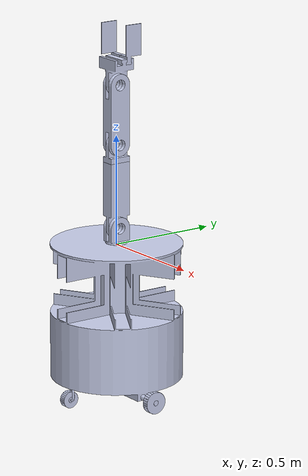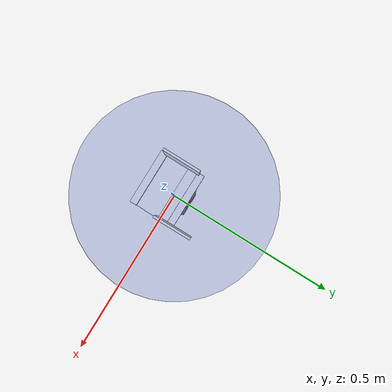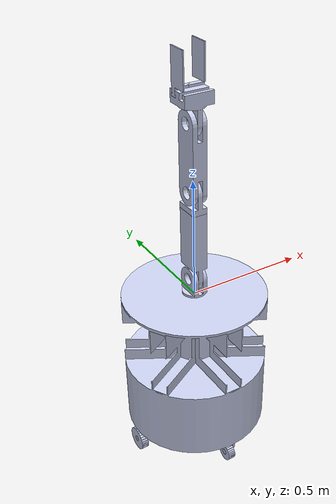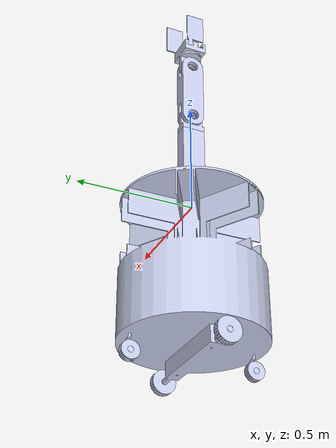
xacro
<?xml version="1.0" encoding="utf-8"?>
<robot
  name="library_bot_assm">
  <link
    name="base_link">
    <inertial>
      <origin
        xyz="-9.00001597661697E-18 -2.58181987165882E-17 -0.419286362322794"
        rpy="0 0 0" />
      <mass
        value="95.6023685202303" />
      <inertia
        ixx="3.54500161671179"
        ixy="-5.31259064517897E-18"
        ixz="2.76471553983804E-18"
        iyy="3.57118394280799"
        iyz="-3.31181542125083E-16"
        izz="3.86248881264609" />
    </inertial>
    <visual>
      <origin
        xyz="0 0 0"
        rpy="0 0 0" />
      <geometry>
        <mesh
          filename="package://library_bot_assm/meshes/base_link.STL" />
      </geometry>
      <material
        name="">
        <color
          rgba="0.792156862745098 0.819607843137255 0.933333333333333 1" />
      </material>
    </visual>
    <collision>
      <origin
        xyz="0 0 0"
        rpy="0 0 0" />
      <geometry>
        <mesh
          filename="package://library_bot_assm/meshes/base_link.STL" />
      </geometry>
    </collision>
  </link>
  <link
    name="drive_wheel_left_link">
    <inertial>
      <origin
        xyz="-2.28615654084008E-16 1.11022302462516E-16 -0.015"
        rpy="0 0 0" />
      <mass
        value="0.220374767201206" />
      <inertia
        ixx="0.000162575540140175"
        ixy="-3.36042123849673E-22"
        ixz="2.4353779546448E-21"
        iyy="0.000162575540140175"
        iyz="4.50137116569684E-22"
        izz="0.000292094865200169" />
    </inertial>
    <visual>
      <origin
        xyz="0 0 0"
        rpy="0 0 0" />
      <geometry>
        <mesh
          filename="package://library_bot_assm/meshes/drive_wheel_left_link.STL" />
      </geometry>
      <material
        name="">
        <color
          rgba="0.792156862745098 0.819607843137255 0.933333333333333 1" />
      </material>
    </visual>
    <collision>
      <origin
        xyz="0 0 0"
        rpy="0 0 0" />
      <geometry>
        <mesh
          filename="package://library_bot_assm/meshes/drive_wheel_left_link.STL" />
      </geometry>
    </collision>
  </link>
  <joint
    name="drive_wheel_left_joint"
    type="continuous">
    <origin
      xyz="-0.27 0 -0.66"
      rpy="-1.5707963267949 0 -1.5707963267949" />
    <parent
      link="base_link" />
    <child
      link="drive_wheel_left_link" />
    <axis
      xyz="0 0 1" />
  </joint>
  <link
    name="drive_wheel_right_link">
    <inertial>
      <origin
        xyz="-2.28513258118277E-16 0 0.0150000000000001"
        rpy="0 0 0" />
      <mass
        value="0.220374767201206" />
      <inertia
        ixx="0.000162575540140175"
        ixy="-4.80798731046448E-21"
        ixz="4.59902630806203E-22"
        iyy="0.000162575540140175"
        iyz="-2.95317189816604E-22"
        izz="0.000292094865200169" />
    </inertial>
    <visual>
      <origin
        xyz="0 0 0"
        rpy="0 0 0" />
      <geometry>
        <mesh
          filename="package://library_bot_assm/meshes/drive_wheel_right_link.STL" />
      </geometry>
      <material
        name="">
        <color
          rgba="0.792156862745098 0.819607843137255 0.933333333333333 1" />
      </material>
    </visual>
    <collision>
      <origin
        xyz="0 0 0"
        rpy="0 0 0" />
      <geometry>
        <mesh
          filename="package://library_bot_assm/meshes/drive_wheel_right_link.STL" />
      </geometry>
    </collision>
  </link>
  <joint
    name="drive_wheel_right_joint"
    type="continuous">
    <origin
      xyz="0.27 0 -0.66"
      rpy="-1.5707963267949 0 -1.5707963267949" />
    <parent
      link="base_link" />
    <child
      link="drive_wheel_right_link" />
    <axis
      xyz="0 0 1" />
  </joint>
  <link
    name="swivel_front_link">
    <inertial>
      <origin
        xyz="0.00760462966279492 -0.0633613818775779 0"
        rpy="0 0 0" />
      <mass
        value="0.0236444808728788" />
      <inertia
        ixx="1.38069026593696E-05"
        ixy="-2.40548516604097E-06"
        ixz="-1.41776354874208E-22"
        iyy="5.52868478263428E-06"
        iyz="-1.99276965618111E-22"
        izz="1.8073623534725E-05" />
    </inertial>
    <visual>
      <origin
        xyz="0 0 0"
        rpy="0 0 0" />
      <geometry>
        <mesh
          filename="package://library_bot_assm/meshes/swivel_front_link.STL" />
      </geometry>
      <material
        name="">
        <color
          rgba="0.792156862745098 0.819607843137255 0.933333333333333 1" />
      </material>
    </visual>
    <collision>
      <origin
        xyz="0 0 0"
        rpy="0 0 0" />
      <geometry>
        <mesh
          filename="package://library_bot_assm/meshes/swivel_front_link.STL" />
      </geometry>
    </collision>
  </link>
  <joint
    name="swivel_front_joint"
    type="continuous">
    <origin
      xyz="0 0.25982621214848 -0.595"
      rpy="1.5707963267949 0 0" />
    <parent
      link="base_link" />
    <child
      link="swivel_front_link" />
    <axis
      xyz="0 1 0" />
  </joint>
  <link
    name="swivelwheel_front_link">
    <inertial>
      <origin
        xyz="5.55111512312578E-17 1.11022302462516E-16 2.22614707383154E-16"
        rpy="0 0 0" />
      <mass
        value="0.117291638747911" />
      <inertia
        ixx="5.44584550233809E-05"
        ixy="-1.83756880608948E-20"
        ixz="4.65183930171833E-21"
        iyy="5.44584550233809E-05"
        iyz="-6.74640617676431E-21"
        izz="9.13231642345752E-05" />
    </inertial>
    <visual>
      <origin
        xyz="0 0 0"
        rpy="0 0 0" />
      <geometry>
        <mesh
          filename="package://library_bot_assm/meshes/swivelwheel_front_link.STL" />
      </geometry>
      <material
        name="">
        <color
          rgba="0.792156862745098 0.819607843137255 0.933333333333333 1" />
      </material>
    </visual>
    <collision>
      <origin
        xyz="0 0 0"
        rpy="0 0 0" />
      <geometry>
        <mesh
          filename="package://library_bot_assm/meshes/swivelwheel_front_link.STL" />
      </geometry>
    </collision>
  </link>
  <joint
    name="swivelwheel_front_joint"
    type="continuous">
    <origin
      xyz="0 -0.0774999999999999 0"
      rpy="0 -1.5707963267949 0" />
    <parent
      link="swivel_front_link" />
    <child
      link="swivelwheel_front_link" />
    <axis
      xyz="0 0 1" />
  </joint>
  <link
    name="swivel_back_link">
    <inertial>
      <origin
        xyz="0.0076046296627947 -0.0633613818775779 0"
        rpy="0 0 0" />
      <mass
        value="0.0236444808728788" />
      <inertia
        ixx="1.38069026593696E-05"
        ixy="-2.40548516604097E-06"
        ixz="-1.41776354874208E-22"
        iyy="5.52868478263428E-06"
        iyz="-1.99276965618111E-22"
        izz="1.8073623534725E-05" />
    </inertial>
    <visual>
      <origin
        xyz="0 0 0"
        rpy="0 0 0" />
      <geometry>
        <mesh
          filename="package://library_bot_assm/meshes/swivel_back_link.STL" />
      </geometry>
      <material
        name="">
        <color
          rgba="0.792156862745098 0.819607843137255 0.933333333333333 1" />
      </material>
    </visual>
    <collision>
      <origin
        xyz="0 0 0"
        rpy="0 0 0" />
      <geometry>
        <mesh
          filename="package://library_bot_assm/meshes/swivel_back_link.STL" />
      </geometry>
    </collision>
  </link>
  <joint
    name="swivel_back_joint"
    type="continuous">
    <origin
      xyz="0 -0.259826212148481 -0.595"
      rpy="1.5707963267949 0 0" />
    <parent
      link="base_link" />
    <child
      link="swivel_back_link" />
    <axis
      xyz="0 1 0" />
  </joint>
  <link
    name="swivelwheel_back_link">
    <inertial>
      <origin
        xyz="0 0 6.3995761596305E-19"
        rpy="0 0 0" />
      <mass
        value="0.117291638747911" />
      <inertia
        ixx="5.44584550233809E-05"
        ixy="-1.49215627686324E-20"
        ixz="3.48199429139889E-21"
        iyy="5.44584550233809E-05"
        iyz="-7.34477589515525E-21"
        izz="9.13231642345753E-05" />
    </inertial>
    <visual>
      <origin
        xyz="0 0 0"
        rpy="0 0 0" />
      <geometry>
        <mesh
          filename="package://library_bot_assm/meshes/swivelwheel_back_link.STL" />
      </geometry>
      <material
        name="">
        <color
          rgba="0.792156862745098 0.819607843137255 0.933333333333333 1" />
      </material>
    </visual>
    <collision>
      <origin
        xyz="0 0 0"
        rpy="0 0 0" />
      <geometry>
        <mesh
          filename="package://library_bot_assm/meshes/swivelwheel_back_link.STL" />
      </geometry>
    </collision>
  </link>
  <joint
    name="swivelwheel_back_joint"
    type="continuous">
    <origin
      xyz="0 -0.0775 0"
      rpy="0 -1.5707963267949 0" />
    <parent
      link="swivel_back_link" />
    <child
      link="swivelwheel_back_link" />
    <axis
      xyz="0 0 1" />
  </joint>
  <link
    name="arm1_link">
    <inertial>
      <origin
        xyz="-1.19990045728466E-18 0.0574056537017304 0.01"
        rpy="0 0 0" />
      <mass
        value="0.39707963267949" />
      <inertia
        ixx="0.000838667522715935"
        ixy="4.00523220180742E-20"
        ixz="3.45295789932022E-21"
        iyy="0.000522111614960166"
        iyz="5.32969071569881E-20"
        izz="0.000690798519008228" />
    </inertial>
    <visual>
      <origin
        xyz="0 0 0"
        rpy="0 0 0" />
      <geometry>
        <mesh
          filename="package://library_bot_assm/meshes/arm1_link.STL" />
      </geometry>
      <material
        name="">
        <color
          rgba="0.792156862745098 0.819607843137255 0.933333333333333 1" />
      </material>
    </visual>
    <collision>
      <origin
        xyz="0 0 0"
        rpy="0 0 0" />
      <geometry>
        <mesh
          filename="package://library_bot_assm/meshes/arm1_link.STL" />
      </geometry>
    </collision>
  </link>
  <joint
    name="arm1_joint"
    type="continuous">
    <origin
      xyz="0 0.01 0"
      rpy="1.5707963267949 0 0" />
    <parent
      link="base_link" />
    <child
      link="arm1_link" />
    <axis
      xyz="0 1 0" />
  </joint>
  <link
    name="arm2_link">
    <inertial>
      <origin
        xyz="-4.32481862348499E-19 0.137125967226228 1.5790313656305E-14"
        rpy="0 0 0" />
      <mass
        value="0.979269908169873" />
      <inertia
        ixx="0.00869233762509293"
        ixy="2.25148676868435E-19"
        ixz="5.47718806389964E-20"
        iyy="0.00137892712566646"
        iyz="8.47824992461145E-19"
        izz="0.00803469515997113" />
    </inertial>
    <visual>
      <origin
        xyz="0 0 0"
        rpy="0 0 0" />
      <geometry>
        <mesh
          filename="package://library_bot_assm/meshes/arm2_link.STL" />
      </geometry>
      <material
        name="">
        <color
          rgba="0.792156862745098 0.819607843137255 0.933333333333333 1" />
      </material>
    </visual>
    <collision>
      <origin
        xyz="0 0 0"
        rpy="0 0 0" />
      <geometry>
        <mesh
          filename="package://library_bot_assm/meshes/arm2_link.STL" />
      </geometry>
    </collision>
  </link>
  <joint
    name="arm2_joint"
    type="revolute">
    <origin
      xyz="0 0.0799999999999999 0.01"
      rpy="0 0 0" />
    <parent
      link="arm1_link" />
    <child
      link="arm2_link" />
    <axis
      xyz="1 0 0" />
    <limit
      lower="-1.5708"
      upper="1.5708"
      effort="0"
      velocity="0" />
  </joint>
  <link
    name="arm3_link">
    <inertial>
      <origin
        xyz="-2.25449825414057E-19 0.145125740501822 1.58008868732187E-14"
        rpy="0 0 0" />
      <mass
        value="0.939269908169872" />
      <inertia
        ixx="0.00722908215002739"
        ixy="2.19044783884263E-20"
        ixz="2.62785139153205E-20"
        iyy="0.000736260458999793"
        iyz="-4.29242111266981E-20"
        izz="0.00676343968490559" />
    </inertial>
    <visual>
      <origin
        xyz="0 0 0"
        rpy="0 0 0" />
      <geometry>
        <mesh
          filename="package://library_bot_assm/meshes/arm3_link.STL" />
      </geometry>
      <material
        name="">
        <color
          rgba="0.792156862745098 0.819607843137255 0.933333333333333 1" />
      </material>
    </visual>
    <collision>
      <origin
        xyz="0 0 0"
        rpy="0 0 0" />
      <geometry>
        <mesh
          filename="package://library_bot_assm/meshes/arm3_link.STL" />
      </geometry>
    </collision>
  </link>
  <joint
    name="arm3_joint"
    type="prismatic">
    <origin
      xyz="0 0.1 0"
      rpy="0 0 0" />
    <parent
      link="arm2_link" />
    <child
      link="arm3_link" />
    <axis
      xyz="0 1 0" />
    <limit
      lower="0"
      upper="0.19"
      effort="0"
      velocity="0" />
  </joint>
  <link
    name="arm4_link">
    <inertial>
      <origin
        xyz="-2.75533202459304E-19 0.135 -1.88445319376486E-15"
        rpy="0 0 0" />
      <mass
        value="1.53707963267949" />
      <inertia
        ixx="0.0132798880020701"
        ixy="-7.94093388050907E-20"
        ixz="-1.84967888061378E-20"
        iyy="0.00186787368907097"
        iyz="1.99933319034426E-19"
        izz="0.0125041499946547" />
    </inertial>
    <visual>
      <origin
        xyz="0 0 0"
        rpy="0 0 0" />
      <geometry>
        <mesh
          filename="package://library_bot_assm/meshes/arm4_link.STL" />
      </geometry>
      <material
        name="">
        <color
          rgba="0.792156862745098 0.819607843137255 0.933333333333333 1" />
      </material>
    </visual>
    <collision>
      <origin
        xyz="0 0 0"
        rpy="0 0 0" />
      <geometry>
        <mesh
          filename="package://library_bot_assm/meshes/arm4_link.STL" />
      </geometry>
    </collision>
  </link>
  <joint
    name="arm4_joint"
    type="revolute">
    <origin
      xyz="0 0.28 0"
      rpy="0 0 0" />
    <parent
      link="arm3_link" />
    <child
      link="arm4_link" />
    <axis
      xyz="1 0 0" />
    <limit
      lower="-1.5708"
      upper="1.5708"
      effort="0"
      velocity="0" />
  </joint>
  <link
    name="gripper_base_link">
    <inertial>
      <origin
        xyz="7.63638074505723E-18 0.0702475328230157 -4.43106300640604E-15"
        rpy="0 0 0" />
      <mass
        value="0.693809724509618" />
      <inertia
        ixx="0.00159672167512236"
        ixy="4.7762734252363E-20"
        ixz="-1.22738383160377E-19"
        iyy="0.00119583522942448"
        iyz="2.14669194784949E-19"
        izz="0.00160407921000055" />
    </inertial>
    <visual>
      <origin
        xyz="0 0 0"
        rpy="0 0 0" />
      <geometry>
        <mesh
          filename="package://library_bot_assm/meshes/gripper_base_link.STL" />
      </geometry>
      <material
        name="">
        <color
          rgba="0.792156862745098 0.819607843137255 0.933333333333333 1" />
      </material>
    </visual>
    <collision>
      <origin
        xyz="0 0 0"
        rpy="0 0 0" />
      <geometry>
        <mesh
          filename="package://library_bot_assm/meshes/gripper_base_link.STL" />
      </geometry>
    </collision>
  </link>
  <joint
    name="gripper_base_joint"
    type="revolute">
    <origin
      xyz="0 0.27 0"
      rpy="0 0 0" />
    <parent
      link="arm4_link" />
    <child
      link="gripper_base_link" />
    <axis
      xyz="1 0 0" />
    <limit
      lower="-1.5708"
      upper="1.5708"
      effort="0"
      velocity="0" />
  </joint>
  <link
    name="gripper_pad1_link">
    <inertial>
      <origin
        xyz="0.0129629629629634 -0.0371180555555556 -0.0430555555555556"
        rpy="0 0 0" />
      <mass
        value="0.108" />
      <inertia
        ixx="0.000353619661458332"
        ixy="6.0034722222225E-05"
        ixz="2.0222222222223E-05"
        iyy="9.19560185185198E-05"
        iyz="-7.20416666666664E-05"
        izz="0.000360192346643518" />
    </inertial>
    <visual>
      <origin
        xyz="0 0 0"
        rpy="0 0 0" />
      <geometry>
        <mesh
          filename="package://library_bot_assm/meshes/gripper_pad1_link.STL" />
      </geometry>
      <material
        name="">
        <color
          rgba="0.792156862745098 0.819607843137255 0.933333333333333 1" />
      </material>
    </visual>
    <collision>
      <origin
        xyz="0 0 0"
        rpy="0 0 0" />
      <geometry>
        <mesh
          filename="package://library_bot_assm/meshes/gripper_pad1_link.STL" />
      </geometry>
    </collision>
  </link>
  <joint
    name="gripper_pad1_joint"
    type="prismatic">
    <origin
      xyz="0 0.12 -0.025"
      rpy="-3.1415 -1.5708 0" />
    <parent
      link="gripper_base_link" />
    <child
      link="gripper_pad1_link" />
    <axis
      xyz="0 0 1" />
    <limit
      lower="0"
      upper="0.06"
      effort="0"
      velocity="0" />
  </joint>
  <link
    name="gripper_pad2_link">
    <inertial>
      <origin
        xyz="-0.0129629629629626 -0.0371180555555558 0.0430555555555555"
        rpy="0 0 0" />
      <mass
        value="0.108" />
      <inertia
        ixx="0.000353619661458334"
        ixy="-6.00347222222194E-05"
        ixz="2.02222222222214E-05"
        iyy="9.19560185185171E-05"
        iyz="7.20416666666668E-05"
        izz="0.000360192346643518" />
    </inertial>
    <visual>
      <origin
        xyz="0 0 0"
        rpy="0 0 0" />
      <geometry>
        <mesh
          filename="package://library_bot_assm/meshes/gripper_pad2_link.STL" />
      </geometry>
      <material
        name="">
        <color
          rgba="0.792156862745098 0.819607843137255 0.933333333333333 1" />
      </material>
    </visual>
    <collision>
      <origin
        xyz="0 0 0"
        rpy="0 0 0" />
      <geometry>
        <mesh
          filename="package://library_bot_assm/meshes/gripper_pad2_link.STL" />
      </geometry>
    </collision>
  </link>
  <joint
    name="gripper_pad2_joint"
    type="prismatic">
    <origin
      xyz="0 0.12 -0.025"
      rpy="-3.1415 -1.5708 0" />
    <parent
      link="gripper_base_link" />
    <child
      link="gripper_pad2_link" />
    <axis
      xyz="0 0 1" />
    <limit
      lower="-0.06"
      upper="0"
      effort="0"
      velocity="0" />
  </joint>
</robot>
